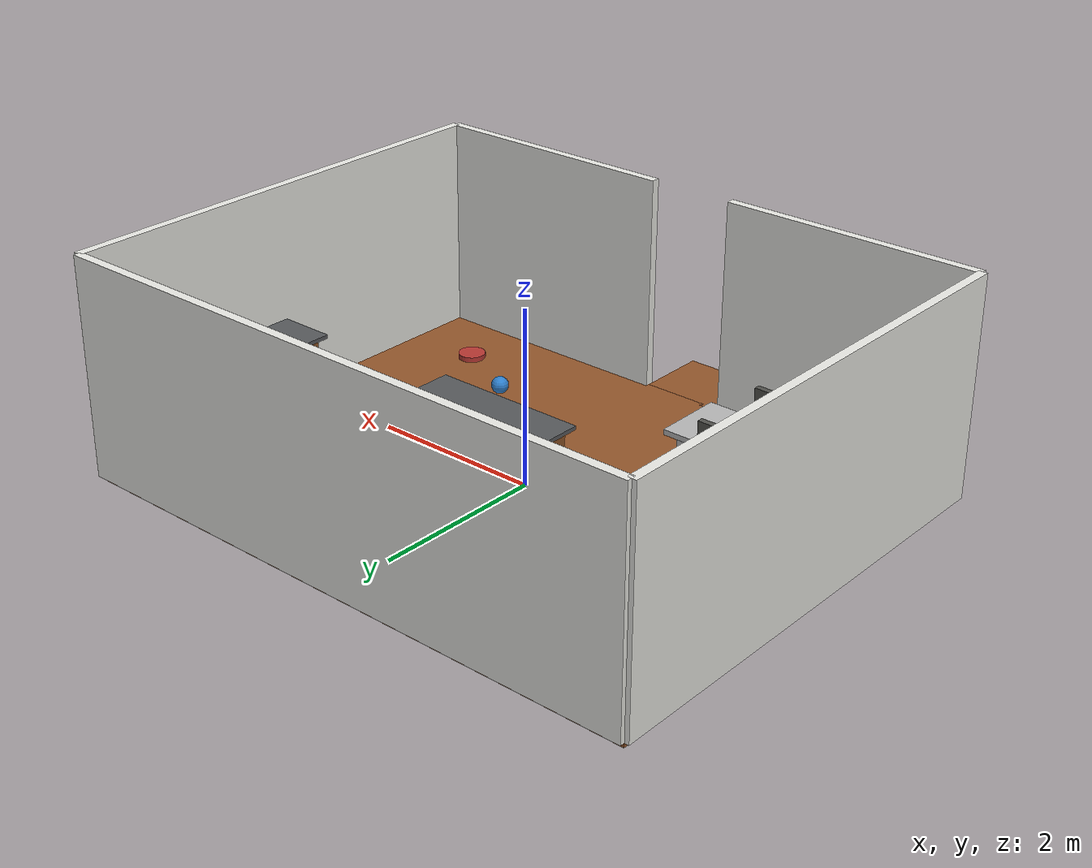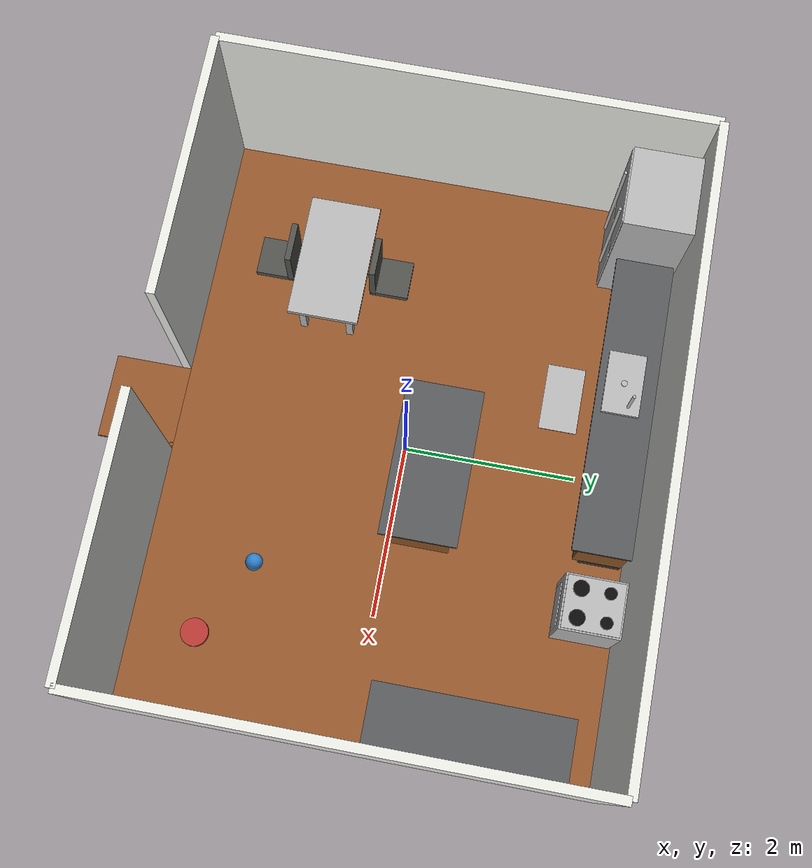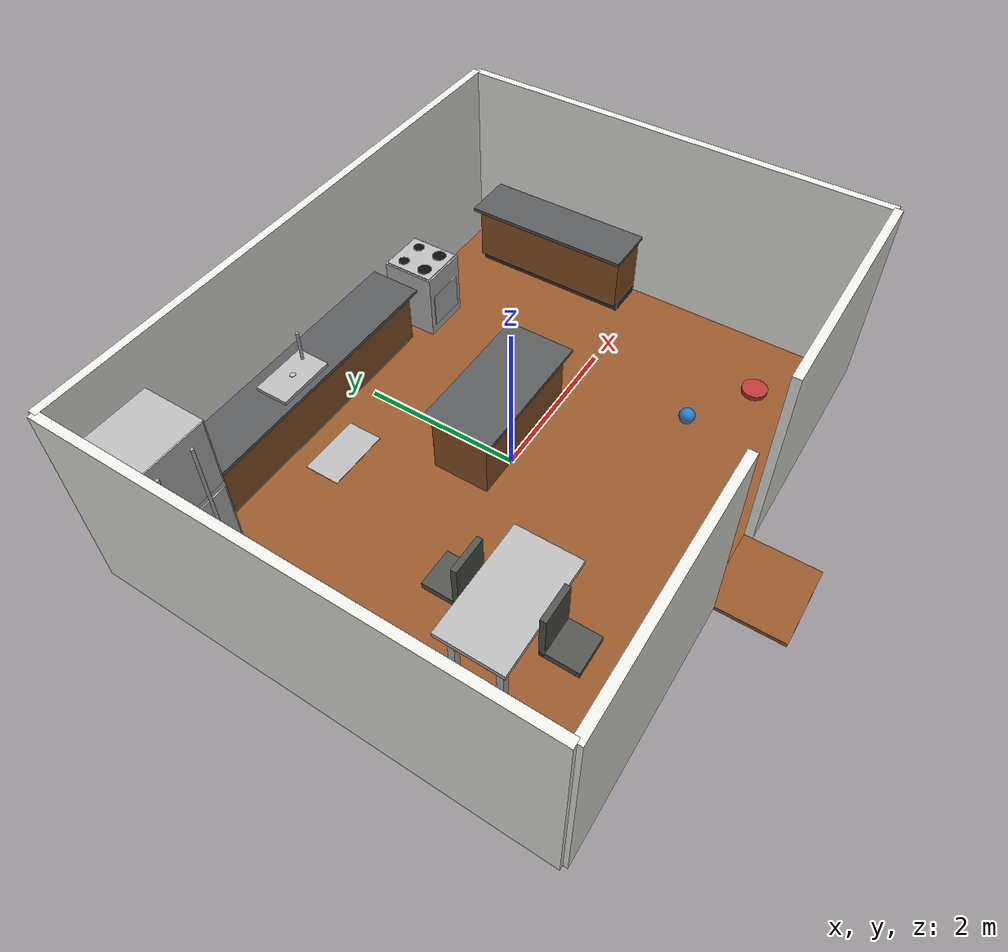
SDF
<?xml version="1.0"?>
<sdf version="1.10">
  <world name="default">
    <scene>
      <shadows>true</shadows>
      <ambient>0.45 0.45 0.45 1</ambient>
      <background>0.72 0.75 0.78 1</background>
    </scene>

    <gui fullscreen="false">
      <camera name="user_camera">
        <pose>7.5 -7.0 6.5 0 0.55 2.35</pose>
        <view_controller>orbit</view_controller>
        <projection_type>perspective</projection_type>
      </camera>
    </gui>

    <physics type="ode">
      <real_time_update_rate>1000</real_time_update_rate>
      <max_step_size>0.001</max_step_size>
      <real_time_factor>1</real_time_factor>
      <ode>
        <solver>
          <type>quick</type>
          <iters>150</iters>
          <precon_iters>0</precon_iters>
          <sor>1.4</sor>
          <use_dynamic_moi_rescaling>true</use_dynamic_moi_rescaling>
        </solver>
        <constraints>
          <cfm>0.00001</cfm>
          <erp>0.2</erp>
          <contact_max_correcting_vel>2000</contact_max_correcting_vel>
          <contact_surface_layer>0.01</contact_surface_layer>
        </constraints>
      </ode>
    </physics>

    <plugin name="gz::sim::systems::Physics" filename="gz-sim-physics-system"/>
    <plugin name="gz::sim::systems::UserCommands" filename="gz-sim-user-commands-system"/>
    <plugin name="gz::sim::systems::SceneBroadcaster" filename="gz-sim-scene-broadcaster-system"/>
    <plugin name="gz::sim::systems::Sensors" filename="gz-sim-sensors-system">
      <render_engine>ogre2</render_engine>
    </plugin>
    <plugin name="gz::sim::systems::Imu" filename="gz-sim-imu-system"/>
    <plugin name="gz::sim::systems::Contact" filename="gz-sim-contact-system"/>

    <gravity>0 0 -9.8</gravity>
    <atmosphere type="adiabatic"/>

    <light name="sun" type="directional">
      <cast_shadows>true</cast_shadows>
      <pose>0 0 10 0 0 0</pose>
      <diffuse>0.85 0.85 0.85 1</diffuse>
      <specular>0.2 0.2 0.2 1</specular>
      <direction>-0.4 0.2 -0.9</direction>
    </light>

    <!-- Self-contained floor: 7.0 m x 5.5 m -->
    <model name="floor">
      <static>true</static>
      <link name="link">
        <collision name="collision">
          <geometry><box><size>7.0 5.5 0.05</size></box></geometry>
        </collision>
        <visual name="visual">
          <geometry><box><size>7.0 5.5 0.05</size></box></geometry>
          <material>
            <ambient>0.48 0.25 0.12 1</ambient>
            <diffuse>0.58 0.34 0.17 1</diffuse>
            <pbr><metal>
              <metalness>0</metalness>
              <albedo_map>model://KitchenMaterials/textures/brown_floor_tiles_Diffuse_1k.jpg</albedo_map>
              <normal_map>model://KitchenMaterials/textures/brown_floor_tiles_nor_gl_1k.jpg</normal_map>
              <roughness_map>model://KitchenMaterials/textures/brown_floor_tiles_Rough_1k.jpg</roughness_map>
            </metal></pbr>
          </material>
        </visual>
      </link>
      <pose>0 0 -0.025 0 0 0</pose>
    </model>

    <!-- Supports the south doorway so a robot can cross the threshold without
         driving off the room slab. The 1.0 m width matches the wall opening. -->
    <model name="doorway_landing">
      <static>true</static>
      <link name="link">
        <collision name="collision"><geometry><box><size>1.00 0.90 0.05</size></box></geometry></collision>
        <visual name="visual"><geometry><box><size>1.00 0.90 0.05</size></box></geometry><material><ambient>0.48 0.25 0.12 1</ambient><diffuse>0.58 0.34 0.17 1</diffuse><pbr><metal><metalness>0</metalness><albedo_map>model://KitchenMaterials/textures/brown_floor_tiles_Diffuse_1k.jpg</albedo_map><normal_map>model://KitchenMaterials/textures/brown_floor_tiles_nor_gl_1k.jpg</normal_map><roughness_map>model://KitchenMaterials/textures/brown_floor_tiles_Rough_1k.jpg</roughness_map></metal></pbr></material></visual>
      </link>
      <pose>0 -3.15 -0.025 0 0 0</pose>
    </model>

    <!-- Room shell; south side has a 1.0 m doorway centered at y=-2.75. -->
    <model name="north_wall">
      <static>true</static>
      <link name="link">
        <collision name="collision"><geometry><box><size>7.0 0.10 2.5</size></box></geometry></collision>
        <visual name="visual"><geometry><box><size>7.0 0.10 2.5</size></box></geometry><material><ambient>0.92 0.92 0.90 1</ambient><diffuse>0.92 0.92 0.90 1</diffuse></material></visual>
      </link>
      <pose>0 2.75 1.25 0 0 0</pose>
    </model>
    <model name="west_wall">
      <static>true</static>
      <link name="link">
        <collision name="collision"><geometry><box><size>0.10 5.5 2.5</size></box></geometry></collision>
        <visual name="visual"><geometry><box><size>0.10 5.5 2.5</size></box></geometry><material><ambient>0.92 0.92 0.90 1</ambient><diffuse>0.92 0.92 0.90 1</diffuse></material></visual>
      </link>
      <pose>-3.5 0 1.25 0 0 0</pose>
    </model>
    <model name="east_wall">
      <static>true</static>
      <link name="link">
        <collision name="collision"><geometry><box><size>0.10 5.5 2.5</size></box></geometry></collision>
        <visual name="visual"><geometry><box><size>0.10 5.5 2.5</size></box></geometry><material><ambient>0.92 0.92 0.90 1</ambient><diffuse>0.92 0.92 0.90 1</diffuse></material></visual>
      </link>
      <pose>3.5 0 1.25 0 0 0</pose>
    </model>
    <model name="south_wall_left">
      <static>true</static>
      <link name="link">
        <collision name="collision"><geometry><box><size>3.0 0.10 2.5</size></box></geometry></collision>
        <visual name="visual"><geometry><box><size>3.0 0.10 2.5</size></box></geometry><material><ambient>0.92 0.92 0.90 1</ambient><diffuse>0.92 0.92 0.90 1</diffuse></material></visual>
      </link>
      <pose>-2.0 -2.75 1.25 0 0 0</pose>
    </model>
    <model name="south_wall_right">
      <static>true</static>
      <link name="link">
        <collision name="collision"><geometry><box><size>3.0 0.10 2.5</size></box></geometry></collision>
        <visual name="visual"><geometry><box><size>3.0 0.10 2.5</size></box></geometry><material><ambient>0.92 0.92 0.90 1</ambient><diffuse>0.92 0.92 0.90 1</diffuse></material></visual>
      </link>
      <pose>2.0 -2.75 1.25 0 0 0</pose>
    </model>

    <!-- NORTH COUNTER RUN. Toe-kick is modeled as a recessed lower plinth:
         cabinet body starts at z=0.13 and is 0.08 m shallower toward the room. -->
    <model name="north_counter_base">
      <static>true</static>
      <link name="link">
        <collision name="collision"><geometry><box><size>3.4 0.56 0.77</size></box></geometry></collision>
        <visual name="visual"><geometry><box><size>3.4 0.56 0.77</size></box></geometry><material><ambient>0.42 0.24 0.10 1</ambient><diffuse>0.55 0.33 0.15 1</diffuse><pbr><metal><metalness>0</metalness><albedo_map>model://KitchenMaterials/textures/oak_wood_planks_Diffuse_1k.jpg</albedo_map><normal_map>model://KitchenMaterials/textures/oak_wood_planks_nor_gl_1k.jpg</normal_map><roughness_map>model://KitchenMaterials/textures/oak_wood_planks_Rough_1k.jpg</roughness_map></metal></pbr></material></visual>
      </link>
      <pose>-0.75 2.39 0.515 0 0 0</pose>
    </model>
    <model name="north_counter_toekick">
      <static>true</static>
      <link name="link">
        <collision name="collision"><geometry><box><size>3.4 0.48 0.13</size></box></geometry></collision>
        <visual name="visual"><geometry><box><size>3.4 0.48 0.13</size></box></geometry><material><ambient>0.20 0.20 0.20 1</ambient><diffuse>0.20 0.20 0.20 1</diffuse></material></visual>
      </link>
      <pose>-0.75 2.43 0.065 0 0 0</pose>
    </model>
    <model name="north_countertop">
      <static>true</static>
      <link name="link">
        <collision name="collision"><geometry><box><size>3.5 0.66 0.045</size></box></geometry></collision>
        <visual name="visual"><geometry><box><size>3.5 0.66 0.045</size></box></geometry><material><ambient>0.22 0.23 0.24 1</ambient><diffuse>0.34 0.35 0.36 1</diffuse><pbr><metal><metalness>0</metalness><albedo_map>model://KitchenMaterials/textures/granite_tile_03_Diffuse_1k.jpg</albedo_map><normal_map>model://KitchenMaterials/textures/granite_tile_03_nor_gl_1k.jpg</normal_map><roughness_map>model://KitchenMaterials/textures/granite_tile_03_Rough_1k.jpg</roughness_map></metal></pbr></material></visual>
      </link>
      <pose>-0.75 2.34 0.9225 0 0 0</pose>
    </model>

    <!-- EAST COUNTER RUN, forming an L. -->
    <model name="east_counter_base">
      <static>true</static>
      <link name="link">
        <collision name="collision"><geometry><box><size>0.56 2.10 0.77</size></box></geometry></collision>
        <visual name="visual"><geometry><box><size>0.56 2.10 0.77</size></box></geometry><material><ambient>0.42 0.24 0.10 1</ambient><diffuse>0.55 0.33 0.15 1</diffuse><pbr><metal><metalness>0</metalness><albedo_map>model://KitchenMaterials/textures/oak_wood_planks_Diffuse_1k.jpg</albedo_map><normal_map>model://KitchenMaterials/textures/oak_wood_planks_nor_gl_1k.jpg</normal_map><roughness_map>model://KitchenMaterials/textures/oak_wood_planks_Rough_1k.jpg</roughness_map></metal></pbr></material></visual>
      </link>
      <pose>3.14 1.25 0.515 0 0 0</pose>
    </model>
    <model name="east_counter_toekick">
      <static>true</static>
      <link name="link">
        <collision name="collision"><geometry><box><size>0.48 2.10 0.13</size></box></geometry></collision>
        <visual name="visual"><geometry><box><size>0.48 2.10 0.13</size></box></geometry><material><ambient>0.20 0.20 0.20 1</ambient><diffuse>0.20 0.20 0.20 1</diffuse></material></visual>
      </link>
      <pose>3.18 1.25 0.065 0 0 0</pose>
    </model>
    <model name="east_countertop">
      <static>true</static>
      <link name="link">
        <collision name="collision"><geometry><box><size>0.66 2.20 0.045</size></box></geometry></collision>
        <visual name="visual"><geometry><box><size>0.66 2.20 0.045</size></box></geometry><material><ambient>0.22 0.23 0.24 1</ambient><diffuse>0.34 0.35 0.36 1</diffuse><pbr><metal><metalness>0</metalness><albedo_map>model://KitchenMaterials/textures/granite_tile_03_Diffuse_1k.jpg</albedo_map><normal_map>model://KitchenMaterials/textures/granite_tile_03_nor_gl_1k.jpg</normal_map><roughness_map>model://KitchenMaterials/textures/granite_tile_03_Rough_1k.jpg</roughness_map></metal></pbr></material></visual>
      </link>
      <pose>3.09 1.25 0.9225 0 0 0</pose>
    </model>

    <!-- Refrigerator -->
    <model name="refrigerator">
      <static>true</static>
      <link name="link">
        <collision name="collision"><geometry><box><size>0.92 0.78 1.90</size></box></geometry></collision>
        <visual name="cabinet"><geometry><box><size>0.92 0.78 1.90</size></box></geometry><material><pbr><metal><metalness>0.86</metalness><roughness>0.28</roughness><albedo>0.55 0.58 0.60 1</albedo></metal></pbr></material></visual>
        <visual name="upper_door"><pose>0 -0.397 0.49 0 0 0</pose><geometry><box><size>0.87 0.018 0.92</size></box></geometry><material><pbr><metal><metalness>0.9</metalness><roughness>0.22</roughness><albedo>0.63 0.66 0.68 1</albedo></metal></pbr></material></visual>
        <visual name="lower_door"><pose>0 -0.397 -0.50 0 0 0</pose><geometry><box><size>0.87 0.018 0.88</size></box></geometry><material><pbr><metal><metalness>0.9</metalness><roughness>0.22</roughness><albedo>0.63 0.66 0.68 1</albedo></metal></pbr></material></visual>
        <visual name="handle_left"><pose>-0.22 -0.425 0.03 0 0 0</pose><geometry><cylinder><radius>0.018</radius><length>1.50</length></cylinder></geometry><material><pbr><metal><metalness>1</metalness><roughness>0.18</roughness><albedo>0.12 0.13 0.14 1</albedo></metal></pbr></material></visual>
        <visual name="handle_right"><pose>0.22 -0.425 0.03 0 0 0</pose><geometry><cylinder><radius>0.018</radius><length>1.50</length></cylinder></geometry><material><pbr><metal><metalness>1</metalness><roughness>0.18</roughness><albedo>0.12 0.13 0.14 1</albedo></metal></pbr></material></visual>
      </link>
      <pose>-2.90 2.31 0.95 0 0 0</pose>
    </model>

    <!-- Range/oven -->
    <model name="range_oven">
      <static>true</static>
      <link name="link">
        <collision name="collision"><geometry><box><size>0.62 0.68 0.90</size></box></geometry></collision>
        <visual name="body"><geometry><box><size>0.62 0.68 0.90</size></box></geometry><material><pbr><metal><metalness>0.8</metalness><roughness>0.30</roughness><albedo>0.20 0.21 0.22 1</albedo></metal></pbr></material></visual>
        <visual name="glass_door"><pose>0 -0.346 -0.08 0 0 0</pose><geometry><box><size>0.48 0.012 0.48</size></box></geometry><material><pbr><metal><metalness>0.35</metalness><roughness>0.08</roughness><albedo>0.03 0.04 0.05 1</albedo></metal></pbr></material></visual>
        <visual name="cooktop"><pose>0 0 0.456 0 0 0</pose><geometry><box><size>0.58 0.64 0.02</size></box></geometry><material><pbr><metal><metalness>0.55</metalness><roughness>0.12</roughness><albedo>0.04 0.05 0.06 1</albedo></metal></pbr></material></visual>
        <visual name="burner_front_left"><pose>-0.16 -0.16 0.472 0 0 0</pose><geometry><cylinder><radius>0.09</radius><length>0.008</length></cylinder></geometry><material><ambient>0.04 0.04 0.04 1</ambient></material></visual>
        <visual name="burner_front_right"><pose>0.16 -0.16 0.472 0 0 0</pose><geometry><cylinder><radius>0.09</radius><length>0.008</length></cylinder></geometry><material><ambient>0.04 0.04 0.04 1</ambient></material></visual>
        <visual name="burner_back_left"><pose>-0.16 0.16 0.472 0 0 0</pose><geometry><cylinder><radius>0.07</radius><length>0.008</length></cylinder></geometry><material><ambient>0.04 0.04 0.04 1</ambient></material></visual>
        <visual name="burner_back_right"><pose>0.16 0.16 0.472 0 0 0</pose><geometry><cylinder><radius>0.07</radius><length>0.008</length></cylinder></geometry><material><ambient>0.04 0.04 0.04 1</ambient></material></visual>
      </link>
      <pose>1.55 2.34 0.45 0 0 0</pose>
    </model>

    <!-- Sink basin recessed visually into the north counter. -->
    <model name="sink_basin">
      <static>true</static>
      <link name="link">
        <visual name="basin"><geometry><box><size>0.72 0.42 0.08</size></box></geometry><material><pbr><metal><metalness>0.95</metalness><roughness>0.22</roughness><albedo>0.37 0.40 0.42 1</albedo></metal></pbr></material></visual>
        <visual name="drain"><pose>0 0 0.045 0 0 0</pose><geometry><cylinder><radius>0.035</radius><length>0.006</length></cylinder></geometry><material><pbr><metal><metalness>1</metalness><roughness>0.16</roughness><albedo>0.10 0.12 0.13 1</albedo></metal></pbr></material></visual>
        <visual name="faucet"><pose>0.26 0.08 0.24 0 0 0</pose><geometry><cylinder><radius>0.018</radius><length>0.40</length></cylinder></geometry><material><pbr><metal><metalness>1</metalness><roughness>0.14</roughness><albedo>0.50 0.52 0.54 1</albedo></metal></pbr></material></visual>
      </link>
      <pose>-0.95 2.30 0.95 0 0 0</pose>
    </model>

    <!-- Kitchen island leaves >1.0 m circulation on all sides for vacuum navigation. -->
    <model name="island_base">
      <static>true</static>
      <link name="link">
        <collision name="collision"><geometry><box><size>1.65 0.72 0.82</size></box></geometry></collision>
        <visual name="visual"><geometry><box><size>1.65 0.72 0.82</size></box></geometry><material><ambient>0.42 0.24 0.10 1</ambient><diffuse>0.55 0.33 0.15 1</diffuse><pbr><metal><metalness>0</metalness><albedo_map>model://KitchenMaterials/textures/oak_wood_planks_Diffuse_1k.jpg</albedo_map><normal_map>model://KitchenMaterials/textures/oak_wood_planks_nor_gl_1k.jpg</normal_map><roughness_map>model://KitchenMaterials/textures/oak_wood_planks_Rough_1k.jpg</roughness_map></metal></pbr></material></visual>
      </link>
      <pose>0.30 0.35 0.41 0 0 0</pose>
    </model>
    <model name="island_top">
      <static>true</static>
      <link name="link">
        <collision name="collision"><geometry><box><size>1.80 0.88 0.045</size></box></geometry></collision>
        <visual name="visual"><geometry><box><size>1.80 0.88 0.045</size></box></geometry><material><ambient>0.22 0.23 0.24 1</ambient><diffuse>0.34 0.35 0.36 1</diffuse><pbr><metal><metalness>0</metalness><albedo_map>model://KitchenMaterials/textures/granite_tile_03_Diffuse_1k.jpg</albedo_map><normal_map>model://KitchenMaterials/textures/granite_tile_03_nor_gl_1k.jpg</normal_map><roughness_map>model://KitchenMaterials/textures/granite_tile_03_Rough_1k.jpg</roughness_map></metal></pbr></material></visual>
      </link>
      <pose>0.30 0.35 0.8425 0 0 0</pose>
    </model>

    <!-- Dining table -->
    <model name="dining_table">
      <static>true</static>
      <link name="link">
        <collision name="top_collision"><pose>0 0 0.72 0 0 0</pose><geometry><box><size>1.45 0.82 0.06</size></box></geometry></collision>
        <visual name="top_visual"><pose>0 0 0.72 0 0 0</pose><geometry><box><size>1.45 0.82 0.06</size></box></geometry><material><pbr><metal><albedo_map>model://KitchenMaterials/textures/oak_wood_planks_Diffuse_1k.jpg</albedo_map><normal_map>model://KitchenMaterials/textures/oak_wood_planks_nor_gl_1k.jpg</normal_map><roughness_map>model://KitchenMaterials/textures/oak_wood_planks_Rough_1k.jpg</roughness_map></metal></pbr></material></visual>
        <collision name="leg1_collision"><pose>0.58 0.28 0.35 0 0 0</pose><geometry><box><size>0.08 0.08 0.70</size></box></geometry></collision>
        <collision name="leg2_collision"><pose>-0.58 0.28 0.35 0 0 0</pose><geometry><box><size>0.08 0.08 0.70</size></box></geometry></collision>
        <collision name="leg3_collision"><pose>0.58 -0.28 0.35 0 0 0</pose><geometry><box><size>0.08 0.08 0.70</size></box></geometry></collision>
        <collision name="leg4_collision"><pose>-0.58 -0.28 0.35 0 0 0</pose><geometry><box><size>0.08 0.08 0.70</size></box></geometry></collision>
        <visual name="leg1_visual"><pose>0.58 0.28 0.35 0 0 0</pose><geometry><box><size>0.08 0.08 0.70</size></box></geometry><material><pbr><metal><albedo_map>model://KitchenMaterials/textures/oak_wood_planks_Diffuse_1k.jpg</albedo_map></metal></pbr></material></visual>
        <visual name="leg2_visual"><pose>-0.58 0.28 0.35 0 0 0</pose><geometry><box><size>0.08 0.08 0.70</size></box></geometry><material><pbr><metal><albedo_map>model://KitchenMaterials/textures/oak_wood_planks_Diffuse_1k.jpg</albedo_map></metal></pbr></material></visual>
        <visual name="leg3_visual"><pose>0.58 -0.28 0.35 0 0 0</pose><geometry><box><size>0.08 0.08 0.70</size></box></geometry><material><pbr><metal><albedo_map>model://KitchenMaterials/textures/oak_wood_planks_Diffuse_1k.jpg</albedo_map></metal></pbr></material></visual>
        <visual name="leg4_visual"><pose>-0.58 -0.28 0.35 0 0 0</pose><geometry><box><size>0.08 0.08 0.70</size></box></geometry><material><pbr><metal><albedo_map>model://KitchenMaterials/textures/oak_wood_planks_Diffuse_1k.jpg</albedo_map></metal></pbr></material></visual>
      </link>
      <pose>-1.90 -1.20 0 0 0 0</pose>
    </model>

    <!-- Four simple dining chairs with a 0.46 m seat height. -->
    <model name="chair_north">
      <static>true</static>
      <link name="link">
        <collision name="seat"><pose>0 0 0.46 0 0 0</pose><geometry><box><size>0.45 0.45 0.08</size></box></geometry></collision>
        <collision name="back"><pose>0 0.19 0.76 0 0 0</pose><geometry><box><size>0.45 0.07 0.60</size></box></geometry></collision>
        <visual name="seat_v"><pose>0 0 0.46 0 0 0</pose><geometry><box><size>0.45 0.45 0.08</size></box></geometry><material><ambient>0.24 0.24 0.22 1</ambient><diffuse>0.32 0.32 0.30 1</diffuse></material></visual>
        <visual name="back_v"><pose>0 0.19 0.76 0 0 0</pose><geometry><box><size>0.45 0.07 0.60</size></box></geometry><material><ambient>0.24 0.24 0.22 1</ambient><diffuse>0.32 0.32 0.30 1</diffuse></material></visual>
      </link>
      <pose>-1.90 -0.52 0 0 0 3.14159</pose>
    </model>
    <model name="chair_south">
      <static>true</static>
      <link name="link">
        <collision name="seat"><pose>0 0 0.46 0 0 0</pose><geometry><box><size>0.45 0.45 0.08</size></box></geometry></collision>
        <collision name="back"><pose>0 0.19 0.76 0 0 0</pose><geometry><box><size>0.45 0.07 0.60</size></box></geometry></collision>
        <visual name="seat_v"><pose>0 0 0.46 0 0 0</pose><geometry><box><size>0.45 0.45 0.08</size></box></geometry><material><ambient>0.24 0.24 0.22 1</ambient><diffuse>0.32 0.32 0.30 1</diffuse></material></visual>
        <visual name="back_v"><pose>0 0.19 0.76 0 0 0</pose><geometry><box><size>0.45 0.07 0.60</size></box></geometry><material><ambient>0.24 0.24 0.22 1</ambient><diffuse>0.32 0.32 0.30 1</diffuse></material></visual>
      </link>
      <pose>-1.90 -1.88 0 0 0 0</pose>
    </model>

    <!-- Small mat at the sink: 0.8 m x 0.45 m x 8 mm -->
    <model name="sink_mat">
      <static>true</static>
      <link name="link">
        <collision name="collision"><geometry><box><size>0.80 0.45 0.008</size></box></geometry></collision>
        <visual name="visual"><geometry><box><size>0.80 0.45 0.008</size></box></geometry><material><pbr><metal><albedo_map>model://KitchenMaterials/textures/denim_fabric_Diffuse_1k.jpg</albedo_map><normal_map>model://KitchenMaterials/textures/denim_fabric_nor_gl_1k.jpg</normal_map><roughness_map>model://KitchenMaterials/textures/denim_fabric_Rough_1k.jpg</roughness_map></metal></pbr></material></visual>
      </link>
      <pose>-0.95 1.72 0.004 0 0 0</pose>
    </model>

    <!-- Pet bowl: static low obstacle useful for LiDAR/navigation testing. -->
    <model name="pet_bowl">
      <static>true</static>
      <link name="link">
        <collision name="collision"><geometry><cylinder><radius>0.16</radius><length>0.06</length></cylinder></geometry></collision>
        <visual name="visual"><geometry><cylinder><radius>0.16</radius><length>0.06</length></cylinder></geometry><material><ambient>0.60 0.18 0.16 1</ambient><diffuse>0.72 0.22 0.20 1</diffuse></material></visual>
      </link>
      <pose>2.55 -1.95 0.03 0 0 0</pose>
    </model>

    <!-- Movable toy ball gives a light dynamic obstacle for bumper/contact testing. -->
    <model name="toy_ball">
      <static>false</static>
      <pose>1.65 -1.45 0.10 0 0 0</pose>
      <link name="link">
        <inertial><mass>0.08</mass><inertia><ixx>0.00032</ixx><iyy>0.00032</iyy><izz>0.00032</izz></inertia></inertial>
        <collision name="collision"><geometry><sphere><radius>0.10</radius></sphere></geometry></collision>
        <visual name="visual"><geometry><sphere><radius>0.10</radius></sphere></geometry><material><ambient>0.15 0.42 0.68 1</ambient><diffuse>0.18 0.50 0.80 1</diffuse></material></visual>
      </link>
    </model>
  </world>
</sdf>
